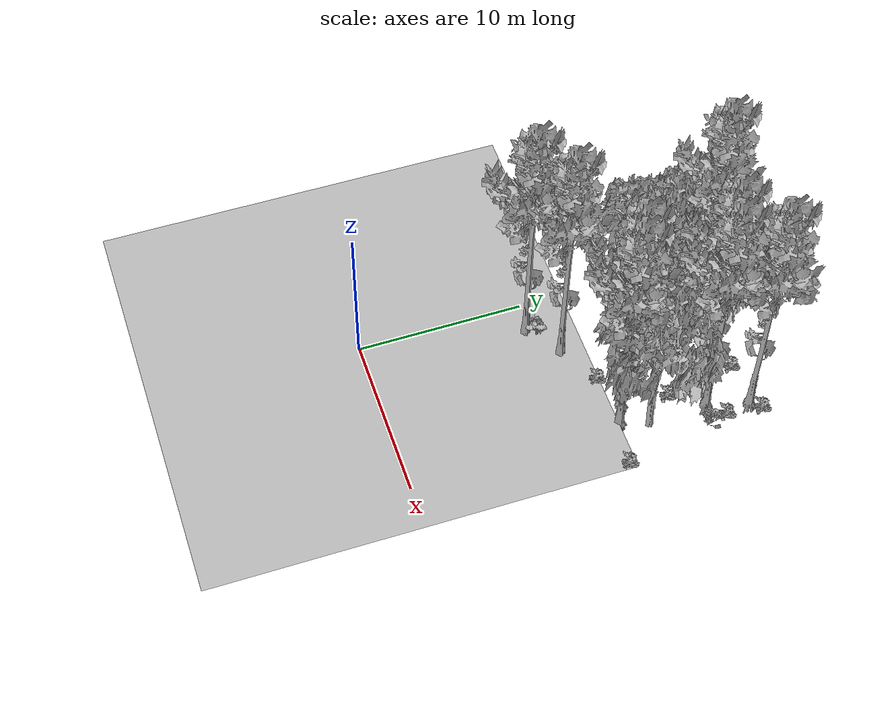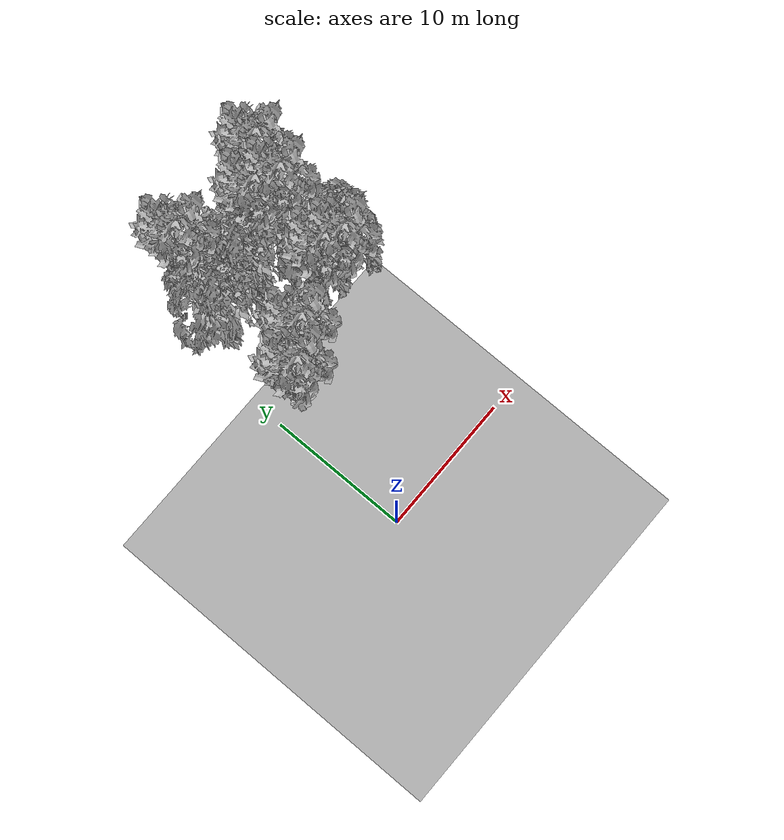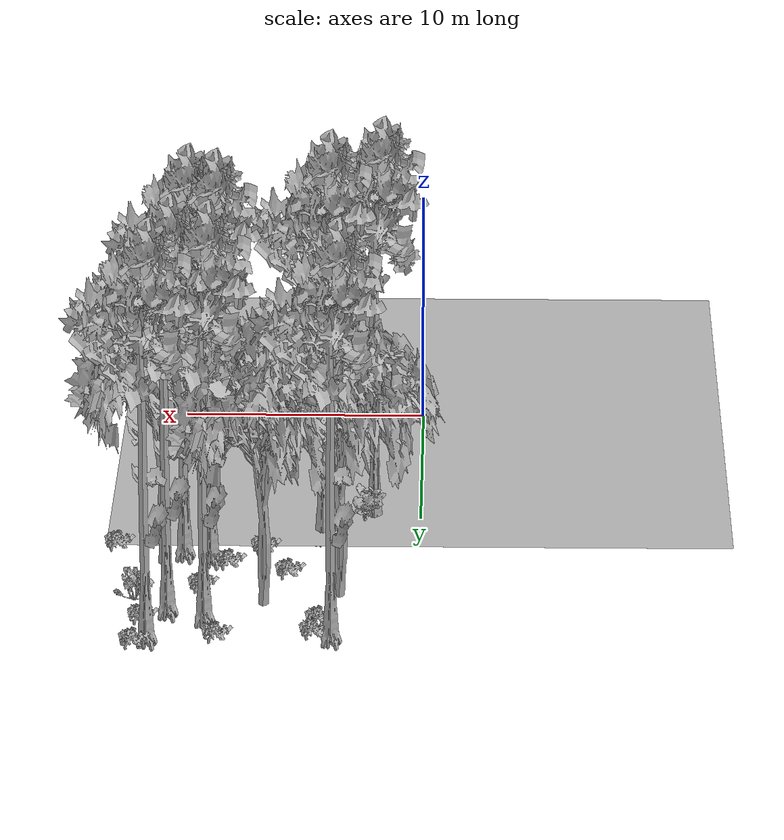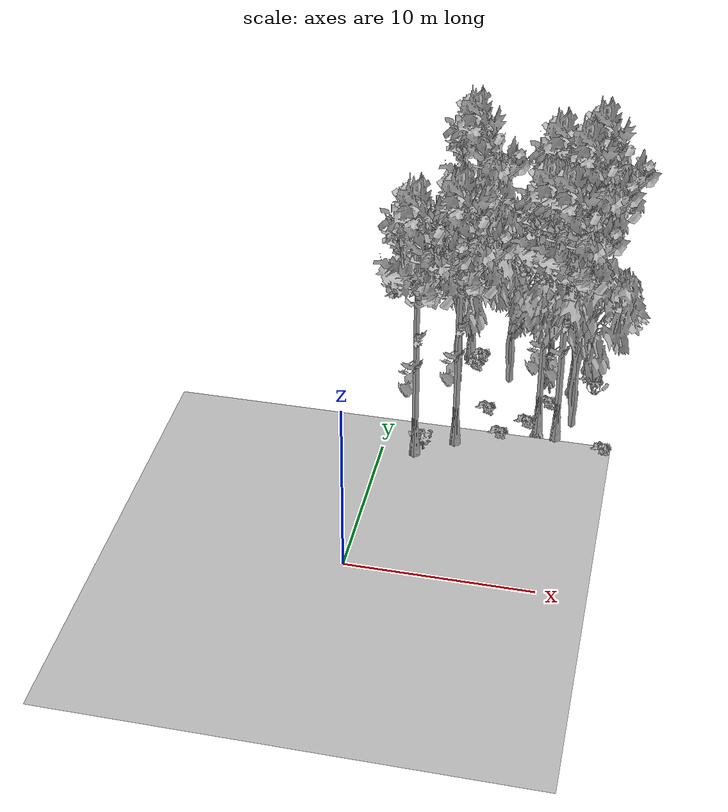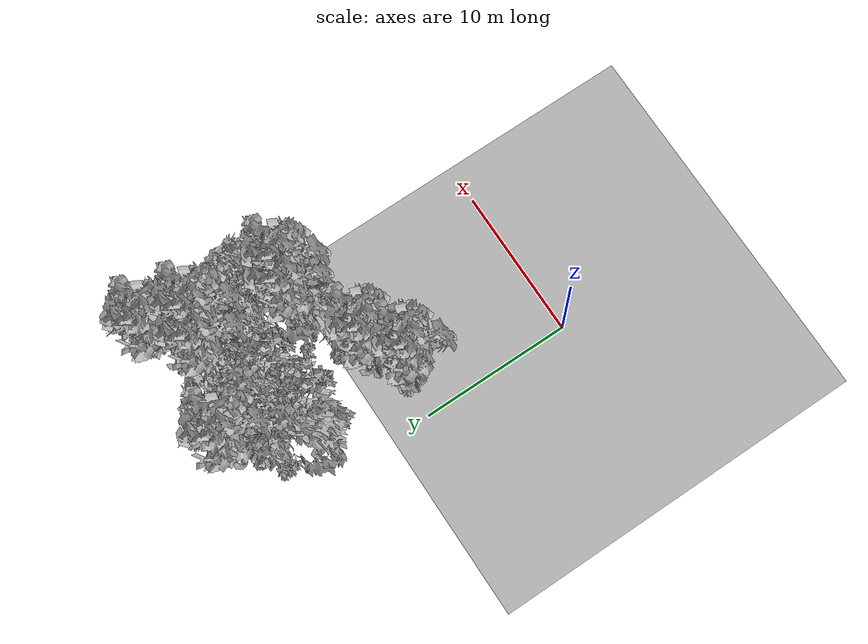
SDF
<sdf version="1.7">
 <world name="default">
  <model name="ground_plane">
   <static>1</static>
   <link name="link">
    <collision name="collision">
     <pose>-50 0 0 0 -0 0</pose>
     <geometry><plane><normal>0 0 1</normal><size>80 80</size></plane></geometry>
     <surface><contact><ode><min_depth>0.01</min_depth><max_vel>0</max_vel></ode></contact></surface>
    </collision>
    <visual name="grass">
     <cast_shadows>0</cast_shadows>
     <geometry>
      <mesh>
       <scale>0.46714285714285714 0.46714285714285714 0.1</scale>
       <uri>file://grass_plane/meshes/grass_plane.dae</uri>
      </mesh>
     </geometry>
    </visual>
   </link>
  </model>
  <model name="Tree 41">
   <static>1</static>
   <pose>3.356729349882521 20.131996311088514 0 1.57079 -0 0</pose>
   <link name="link">
    <collision name="collision">
     <geometry><mesh><scale>3.5 5 3.5</scale><uri>model://tree_9/meshes/tree_9.obj</uri></mesh></geometry>
    </collision>
    <visual name="visual">
     <geometry><mesh><scale>3.5 5 3.5</scale><uri>model://tree_9/meshes/tree_9.obj</uri></mesh></geometry>
    </visual>
   </link>
  </model>
  <model name="Tree 83">
   <static>1</static>
   <pose>8.364771385654528 18.49062641119302 0 1.57079 -0 0</pose>
   <link name="link">
    <collision name="collision">
     <geometry><mesh><scale>3.5 5 3.5</scale><uri>model://tree_9/meshes/tree_9.obj</uri></mesh></geometry>
    </collision>
    <visual name="visual">
     <geometry><mesh><scale>3.5 5 3.5</scale><uri>model://tree_9/meshes/tree_9.obj</uri></mesh></geometry>
    </visual>
   </link>
  </model>
  <model name="Tree 128">
   <static>1</static>
   <pose>1.8699741698975316 9.678205551728041 0 1.57079 -0 0</pose>
   <link name="link">
    <collision name="collision">
     <geometry><mesh><scale>3.5 5 3.5</scale><uri>model://tree_9/meshes/tree_9.obj</uri></mesh></geometry>
    </collision>
    <visual name="visual">
     <geometry><mesh><scale>3.5 5 3.5</scale><uri>model://tree_9/meshes/tree_9.obj</uri></mesh></geometry>
    </visual>
   </link>
  </model>
  <model name="Tree 139">
   <static>1</static>
   <pose>5.964529841229876 17.756642800309038 0 1.57079 -0 0</pose>
   <link name="link">
    <collision name="collision">
     <geometry><mesh><scale>3.5 5 3.5</scale><uri>model://tree_2/meshes/tree_2.obj</uri></mesh></geometry>
    </collision>
    <visual name="visual">
     <geometry><mesh><scale>3.5 5 3.5</scale><uri>model://tree_2/meshes/tree_2.obj</uri></mesh></geometry>
    </visual>
   </link>
  </model>
  <model name="Tree 424">
   <static>1</static>
   <pose>10.528996943741205 20.272460361171625 0 1.57079 -0 0</pose>
   <link name="link">
    <collision name="collision">
     <geometry><mesh><scale>3.5 5 3.5</scale><uri>model://tree_9/meshes/tree_9.obj</uri></mesh></geometry>
    </collision>
    <visual name="visual">
     <geometry><mesh><scale>3.5 5 3.5</scale><uri>model://tree_9/meshes/tree_9.obj</uri></mesh></geometry>
    </visual>
   </link>
  </model>
  <model name="Tree 456">
   <static>1</static>
   <pose>2.9952300882513327 16.96446774941768 0 1.57079 -0 0</pose>
   <link name="link">
    <collision name="collision">
     <geometry><mesh><scale>3.5 5 3.5</scale><uri>model://tree_2/meshes/tree_2.obj</uri></mesh></geometry>
    </collision>
    <visual name="visual">
     <geometry><mesh><scale>3.5 5 3.5</scale><uri>model://tree_2/meshes/tree_2.obj</uri></mesh></geometry>
    </visual>
   </link>
  </model>
  <model name="Tree 466">
   <static>1</static>
   <pose>3.920271324295129 11.121906897399754 0 1.57079 -0 0</pose>
   <link name="link">
    <collision name="collision">
     <geometry><mesh><scale>3.5 5 3.5</scale><uri>model://tree_9/meshes/tree_9.obj</uri></mesh></geometry>
    </collision>
    <visual name="visual">
     <geometry><mesh><scale>3.5 5 3.5</scale><uri>model://tree_9/meshes/tree_9.obj</uri></mesh></geometry>
    </visual>
   </link>
  </model>
  <model name="Tree 492">
   <static>1</static>
   <pose>9.441535007123285 12.6887694616956 0 1.57079 -0 0</pose>
   <link name="link">
    <collision name="collision">
     <geometry><mesh><scale>3.5 5 3.5</scale><uri>model://tree_9/meshes/tree_9.obj</uri></mesh></geometry>
    </collision>
    <visual name="visual">
     <geometry><mesh><scale>3.5 5 3.5</scale><uri>model://tree_9/meshes/tree_9.obj</uri></mesh></geometry>
    </visual>
   </link>
  </model>
  <model name="Tree 527">
   <static>1</static>
   <pose>9.840173740415963 17.850165530265002 0 1.57079 -0 0</pose>
   <link name="link">
    <collision name="collision">
     <geometry><mesh><scale>3.5 5 3.5</scale><uri>model://tree_9/meshes/tree_9.obj</uri></mesh></geometry>
    </collision>
    <visual name="visual">
     <geometry><mesh><scale>3.5 5 3.5</scale><uri>model://tree_9/meshes/tree_9.obj</uri></mesh></geometry>
    </visual>
   </link>
  </model>
  <model name="Tree 528">
   <static>1</static>
   <pose>10.103438114462755 14.183733570612361 0 1.57079 -0 0</pose>
   <link name="link">
    <collision name="collision">
     <geometry><mesh><scale>3.5 5 3.5</scale><uri>model://tree_2/meshes/tree_2.obj</uri></mesh></geometry>
    </collision>
    <visual name="visual">
     <geometry><mesh><scale>3.5 5 3.5</scale><uri>model://tree_2/meshes/tree_2.obj</uri></mesh></geometry>
    </visual>
   </link>
  </model>
  <model name="Tree 634">
   <static>1</static>
   <pose>8.348176678983009 13.190864127998651 0 1.57079 -0 0</pose>
   <link name="link">
    <collision name="collision">
     <geometry><mesh><scale>3.5 5 3.5</scale><uri>model://tree_9/meshes/tree_9.obj</uri></mesh></geometry>
    </collision>
    <visual name="visual">
     <geometry><mesh><scale>3.5 5 3.5</scale><uri>model://tree_9/meshes/tree_9.obj</uri></mesh></geometry>
    </visual>
   </link>
  </model>
  <model name="Bush 184">
   <static>1</static>
   <pose>7.808248319242594 20.27302893958273 0 1.57079 -0 0</pose>
   <link name="link">
    <collision name="collision">
     <geometry><mesh><scale>2 2 2</scale><uri>model://bush_2/meshes/bush_2.obj</uri></mesh></geometry>
     <surface><contact><collide_without_contact>false</collide_without_contact></contact></surface>
    </collision>
    <visual name="visual">
     <geometry><mesh><scale>2 2 2</scale><uri>model://bush_2/meshes/bush_2.obj</uri></mesh></geometry>
    </visual>
   </link>
  </model>
  <model name="Bush 277">
   <static>1</static>
   <pose>4.027312817476634 19.955331045178568 0 1.57079 -0 0</pose>
   <link name="link">
    <collision name="collision">
     <geometry><mesh><scale>2 2 2</scale><uri>model://bush_2/meshes/bush_2.obj</uri></mesh></geometry>
     <surface><contact><collide_without_contact>false</collide_without_contact></contact></surface>
    </collision>
    <visual name="visual">
     <geometry><mesh><scale>2 2 2</scale><uri>model://bush_2/meshes/bush_2.obj</uri></mesh></geometry>
    </visual>
   </link>
  </model>
  <model name="Bush 347">
   <static>1</static>
   <pose>11.16453149337785 17.47119222443986 0 1.57079 -0 0</pose>
   <link name="link">
    <collision name="collision">
     <geometry><mesh><scale>2 2 2</scale><uri>model://bush_4/meshes/bush_4.obj</uri></mesh></geometry>
     <surface><contact><collide_without_contact>false</collide_without_contact></contact></surface>
    </collision>
    <visual name="visual">
     <geometry><mesh><scale>2 2 2</scale><uri>model://bush_4/meshes/bush_4.obj</uri></mesh></geometry>
    </visual>
   </link>
  </model>
  <model name="Bush 352">
   <static>1</static>
   <pose>10.790198506139212 18.75839283253665 0 1.57079 -0 0</pose>
   <link name="link">
    <collision name="collision">
     <geometry><mesh><scale>2 2 2</scale><uri>model://bush_2/meshes/bush_2.obj</uri></mesh></geometry>
     <surface><contact><collide_without_contact>false</collide_without_contact></contact></surface>
    </collision>
    <visual name="visual">
     <geometry><mesh><scale>2 2 2</scale><uri>model://bush_2/meshes/bush_2.obj</uri></mesh></geometry>
    </visual>
   </link>
  </model>
  <model name="Bush 368">
   <static>1</static>
   <pose>2.23430164077854 10.240285306205749 0 1.57079 -0 0</pose>
   <link name="link">
    <collision name="collision">
     <geometry><mesh><scale>2 2 2</scale><uri>model://bush_0/meshes/bush_0.obj</uri></mesh></geometry>
     <surface><contact><collide_without_contact>false</collide_without_contact></contact></surface>
    </collision>
    <visual name="visual">
     <geometry><mesh><scale>2 2 2</scale><uri>model://bush_0/meshes/bush_0.obj</uri></mesh></geometry>
    </visual>
   </link>
  </model>
  <model name="Bush 389">
   <static>1</static>
   <pose>7.558073192550786 13.90296456919657 0 1.57079 -0 0</pose>
   <link name="link">
    <collision name="collision">
     <geometry><mesh><scale>2 2 2</scale><uri>model://bush_2/meshes/bush_2.obj</uri></mesh></geometry>
     <surface><contact><collide_without_contact>false</collide_without_contact></contact></surface>
    </collision>
    <visual name="visual">
     <geometry><mesh><scale>2 2 2</scale><uri>model://bush_2/meshes/bush_2.obj</uri></mesh></geometry>
    </visual>
   </link>
  </model>
  <model name="Bush 423">
   <static>1</static>
   <pose>3.832608608374457 18.89203170775579 0 1.57079 -0 0</pose>
   <link name="link">
    <collision name="collision">
     <geometry><mesh><scale>2 2 2</scale><uri>model://bush_2/meshes/bush_2.obj</uri></mesh></geometry>
     <surface><contact><collide_without_contact>false</collide_without_contact></contact></surface>
    </collision>
    <visual name="visual">
     <geometry><mesh><scale>2 2 2</scale><uri>model://bush_2/meshes/bush_2.obj</uri></mesh></geometry>
    </visual>
   </link>
  </model>
  <model name="Bush 428">
   <static>1</static>
   <pose>12.126225264541098 12.247710078902003 0 1.57079 -0 0</pose>
   <link name="link">
    <collision name="collision">
     <geometry><mesh><scale>2 2 2</scale><uri>model://bush_2/meshes/bush_2.obj</uri></mesh></geometry>
     <surface><contact><collide_without_contact>false</collide_without_contact></contact></surface>
    </collision>
    <visual name="visual">
     <geometry><mesh><scale>2 2 2</scale><uri>model://bush_2/meshes/bush_2.obj</uri></mesh></geometry>
    </visual>
   </link>
  </model>
  <model name="Bush 446">
   <static>1</static>
   <pose>6.207398556031251 12.52491891258952 0 1.57079 -0 0</pose>
   <link name="link">
    <collision name="collision">
     <geometry><mesh><scale>2 2 2</scale><uri>model://bush_2/meshes/bush_2.obj</uri></mesh></geometry>
     <surface><contact><collide_without_contact>false</collide_without_contact></contact></surface>
    </collision>
    <visual name="visual">
     <geometry><mesh><scale>2 2 2</scale><uri>model://bush_2/meshes/bush_2.obj</uri></mesh></geometry>
    </visual>
   </link>
  </model>
  <model name="Bush 460">
   <static>1</static>
   <pose>8.565560000649633 15.965361598866423 0 1.57079 -0 0</pose>
   <link name="link">
    <collision name="collision">
     <geometry><mesh><scale>2 2 2</scale><uri>model://bush_2/meshes/bush_2.obj</uri></mesh></geometry>
     <surface><contact><collide_without_contact>false</collide_without_contact></contact></surface>
    </collision>
    <visual name="visual">
     <geometry><mesh><scale>2 2 2</scale><uri>model://bush_2/meshes/bush_2.obj</uri></mesh></geometry>
    </visual>
   </link>
  </model>
  <model name="Bush 498">
   <static>1</static>
   <pose>11.007884558384916 20.85241068164791 0 1.57079 -0 0</pose>
   <link name="link">
    <collision name="collision">
     <geometry><mesh><scale>2 2 2</scale><uri>model://bush_2/meshes/bush_2.obj</uri></mesh></geometry>
     <surface><contact><collide_without_contact>false</collide_without_contact></contact></surface>
    </collision>
    <visual name="visual">
     <geometry><mesh><scale>2 2 2</scale><uri>model://bush_2/meshes/bush_2.obj</uri></mesh></geometry>
    </visual>
   </link>
  </model>
  <model name="Bush 525">
   <static>1</static>
   <pose>5.163618547396474 14.711411537257334 0 1.57079 -0 0</pose>
   <link name="link">
    <collision name="collision">
     <geometry><mesh><scale>2 2 2</scale><uri>model://bush_2/meshes/bush_2.obj</uri></mesh></geometry>
     <surface><contact><collide_without_contact>false</collide_without_contact></contact></surface>
    </collision>
    <visual name="visual">
     <geometry><mesh><scale>2 2 2</scale><uri>model://bush_2/meshes/bush_2.obj</uri></mesh></geometry>
    </visual>
   </link>
  </model>
 </world>
</sdf>
